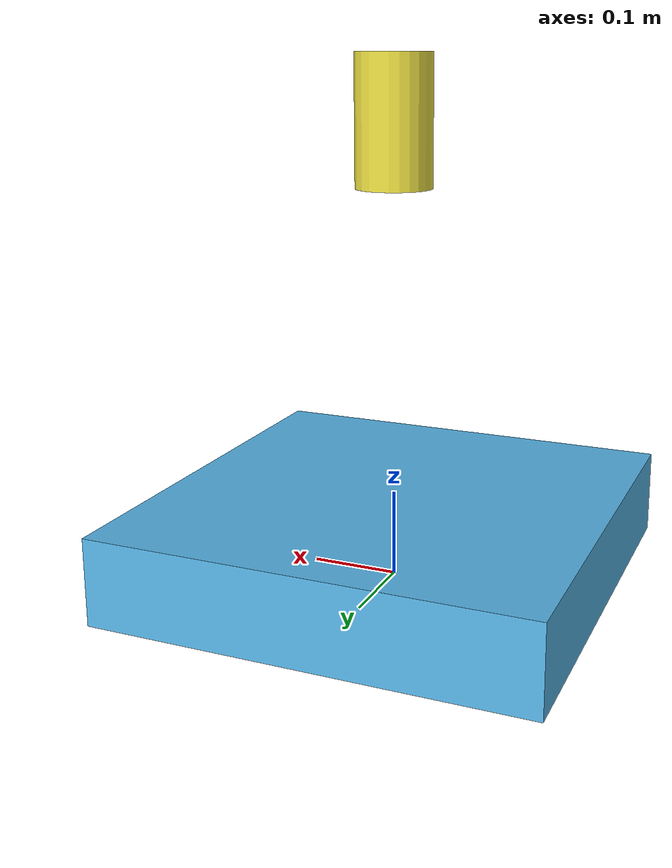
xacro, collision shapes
<?xml version="1.0"?>
<robot xmlns:xacro="http://www.ros.org/wiki/xacro" name="example">
  <xacro:arg name="gpu" default="false"/>
  <xacro:property name="gpu" value="$(arg gpu)" />
  <xacro:arg name="organize_cloud" default="true"/>
  <xacro:property name="organize_cloud" value="$(arg organize_cloud)" />

  <!-- Base Footprint -->
  <link name="base_footprint" />

  <!-- Base Link -->
  <joint name="footprint" type="fixed" >
   <parent link="base_footprint" />
    <child link="base_link" />
    <origin xyz="0 0 0.05" rpy="0 0 0" />
  </joint>
  <link name="base_link" >
    <visual>
      <geometry>
        <box size="0.5 0.5 0.1" />
      </geometry>
    </visual>
    <collision>
      <geometry>
        <box size="0.5 0.5 0.1" />
      </geometry>
    </collision>
    <inertial>
      <origin xyz="0 0 0"/>
      <mass value="10"/>
      <inertia ixx="3.0" ixy="0.0" ixz="0.0"
               iyy="3.0" iyz="0.0"
               izz="3.0" />
    </inertial>
  </link>

  <!-- IMU -->
  <link name="imu_link">
    <inertial>
      <mass value="0.01"/>
      <origin xyz="0 0 0"/>
      <inertia ixx="1e-6" ixy="0" ixz="0" iyy="1e-6" iyz="0" izz="1e-6"/>
    </inertial>
  </link>

  <joint name="imu_joint" type="fixed">
    <parent link="base_link"/>
    <child link="imu_link"/>
    <origin xyz="0 0 0" rpy="0 0 0"/>
  </joint>

  <gazebo reference="imu_link">
    <sensor name="imu_sensor" type="imu">
      <always_on>true</always_on>
      <update_rate>100</update_rate>
      <imu>
        <angular_velocity>
          <x>
            <noise type="gaussian">
              <mean>0.0</mean>
              <stddev>2e-4</stddev>
            </noise>
          </x>
          <y>
            <noise type="gaussian">
              <mean>0.0</mean>
              <stddev>2e-4</stddev>
            </noise>
          </y>
          <z>
            <noise type="gaussian">
              <mean>0.0</mean>
              <stddev>2e-4</stddev>
            </noise>
          </z>
        </angular_velocity>
        <linear_acceleration>
          <x>
            <noise type="gaussian">
              <mean>0.0</mean>
              <stddev>1.7e-2</stddev>
            </noise>
          </x>
          <y>
            <noise type="gaussian">
              <mean>0.0</mean>
              <stddev>1.7e-2</stddev>
            </noise>
          </y>
          <z>
            <noise type="gaussian">
              <mean>0.0</mean>
              <stddev>1.7e-2</stddev>
            </noise>
          </z>
        </linear_acceleration>
      </imu>
      <plugin name="imu_plugin" filename="libgazebo_ros_imu_sensor.so">
        <ros>
          <remapping>~/out:=dog_imu</remapping>
        </ros>
      </plugin>
    </sensor>
  </gazebo>

  <xacro:include filename="$(find velodyne_description)/urdf/HDL-32E.urdf.xacro"/>
  <xacro:HDL-32E parent="base_link" name="rslidar" topic="/rslidar_points" organize_cloud="${organize_cloud}" hz="20" samples="1800" min_angle="-3.14159" max_angle="3.14159" min_vertical_angle="-0.9599" max_vertical_angle="0.2618" gpu="${gpu}">
    <origin xyz="0 0 0.4" rpy="0 0 0" />
  </xacro:HDL-32E>

</robot>

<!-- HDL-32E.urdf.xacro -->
<robot xmlns:xacro="http://www.ros.org/wiki/xacro" name="HDL-32E">
  <xacro:property name="M_PI" value="3.1415926535897931" />
  <xacro:macro name="HDL-32E" params="*origin parent:=base_link name:=velodyne tf_prefix:='' topic:=/velodyne_points organize_cloud:=false hz:=10 lasers:=32 samples:=2187 collision_range:=0.3 min_range:=0.9 max_range:=130.0 noise:=0.008 min_angle:=-${M_PI} max_angle:=${M_PI} min_vertical_angle:=-${30.67*M_PI/180.0} max_vertical_angle:=${10.67*M_PI/180.0} gpu:=false">

    <joint name="${name}_base_mount_joint" type="fixed">
      <xacro:insert_block name="origin" />
      <parent link="${parent}"/>
      <child link="${name}_base_link"/>
    </joint>

    <link name="${name}_base_link">
      <inertial>
        <mass value="1.0"/>
        <origin xyz="0 0 0.07212"/>
        <inertia ixx="${(1.0 * (3.0*0.04267*0.04267 + 0.14424*0.14424)) / 12.0}" ixy="0" ixz="0"
          iyy="${(1.0 * (3.0*0.04267*0.04267 + 0.14424*0.14424)) / 12.0}" iyz="0"
          izz="${0.5 * 1.0 * (0.04267*0.04267)}"/>
      </inertial>
      <visual>
        <geometry>
          <mesh filename="package://velodyne_description/meshes/HDL32E_base.dae" />
        </geometry>
      </visual>
      <collision>
        <origin rpy="0 0 0" xyz="0 0 0.07212"/>
        <geometry>
          <cylinder radius="0.04267" length="0.14424"/>
        </geometry>
      </collision>
    </link>

    <joint name="${name}_base_scan_joint" type="fixed" >
      <origin xyz="0 0 0.09081" rpy="0 0 0" />
      <parent link="${name}_base_link" />
      <child link="${name}"/>
    </joint>

    <link name="${name}">
      <inertial>
        <mass value="0.01"/>
        <origin xyz="0 0 0"/>
        <inertia ixx="1e-7" ixy="0" ixz="0" iyy="1e-7" iyz="0" izz="1e-7"/>
      </inertial>
      <visual>
        <origin xyz="0 0 -0.09081" rpy="0 0 0" />
        <geometry>
          <mesh filename="package://velodyne_description/meshes/HDL32E_scan.dae" />
        </geometry>
      </visual>
      <collision>
        <geometry>
          <sphere radius="0"/>
        </geometry>
      </collision>
    </link>

    <!-- Gazebo requires the velodyne_gazebo_plugins package -->
    <gazebo reference="${name}">
      <xacro:if value="${gpu}">
        <sensor type="gpu_ray" name="${name}-HDL32E">
          <pose>0 0 0 0 0 0</pose>
          <visualize>false</visualize>
          <update_rate>${hz}</update_rate>
          <ray>
            <scan>
              <horizontal>
                <samples>${samples}</samples>
                <resolution>1</resolution>
                <min_angle>${min_angle}</min_angle>
                <max_angle>${max_angle}</max_angle>
              </horizontal>
              <vertical>
                <samples>${lasers}</samples>
                <resolution>1</resolution>
                <min_angle>${min_vertical_angle}</min_angle>
                <max_angle>${max_vertical_angle}</max_angle>
              </vertical>
            </scan>
            <range>
              <min>${collision_range}</min>
              <max>${max_range+1}</max>
              <resolution>0.001</resolution>
            </range>
            <noise>
              <type>gaussian</type>
              <mean>0.0</mean>
              <stddev>0.0</stddev>
            </noise>
          </ray>
          <plugin name="gazebo_ros_laser_controller" filename="libgazebo_ros_velodyne_laser.so">
            <ros>
              <namespace>/${name}</namespace>
              <remapping>~/out:=${topic}</remapping>
            </ros>
            <tf_prefix>${tf_prefix}</tf_prefix>
            <frame_name>${name}</frame_name>
            <organize_cloud>${organize_cloud}</organize_cloud>
            <min_range>${min_range}</min_range>
            <max_range>${max_range}</max_range>
            <gaussian_noise>${noise}</gaussian_noise>
          </plugin>
        </sensor>
      </xacro:if>
      <xacro:unless value="${gpu}">
        <sensor type="ray" name="${name}-HDL32E">
          <pose>0 0 0 0 0 0</pose>
          <visualize>false</visualize>
          <update_rate>${hz}</update_rate>
          <ray>
            <scan>
              <horizontal>
                <samples>${samples}</samples>
                <resolution>1</resolution>
                <min_angle>${min_angle}</min_angle>
                <max_angle>${max_angle}</max_angle>
              </horizontal>
              <vertical>
                <samples>${lasers}</samples>
                <resolution>1</resolution>
                <min_angle>${min_vertical_angle}</min_angle>
                <max_angle>${max_vertical_angle}</max_angle>
              </vertical>
            </scan>
            <range>
              <min>${collision_range}</min>
              <max>${max_range+1}</max>
              <resolution>0.001</resolution>
            </range>
            <noise>
              <type>gaussian</type>
              <mean>0.0</mean>
              <stddev>0.0</stddev>
            </noise>
          </ray>
          <plugin name="gazebo_ros_laser_controller" filename="libgazebo_ros_velodyne_laser.so">
            <ros>
              <namespace>/${name}</namespace>
              <remapping>~/out:=${topic}</remapping>
            </ros>
            <tf_prefix>${tf_prefix}</tf_prefix>
            <frame_name>${name}</frame_name>
            <organize_cloud>${organize_cloud}</organize_cloud>
            <min_range>${min_range}</min_range>
            <max_range>${max_range}</max_range>
            <gaussian_noise>${noise}</gaussian_noise>
          </plugin>
        </sensor>
      </xacro:unless>
    </gazebo>

  </xacro:macro>
</robot>
